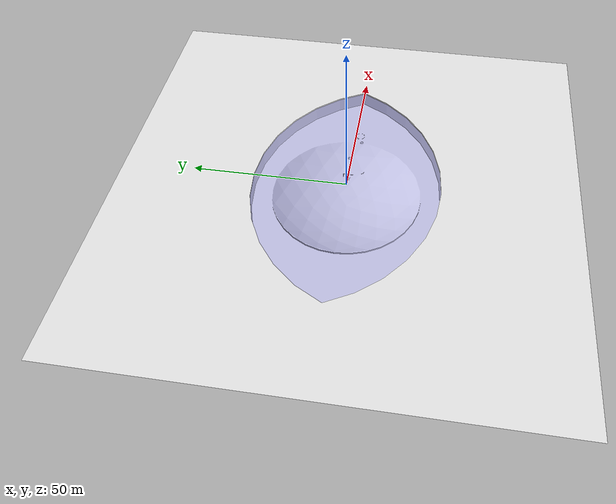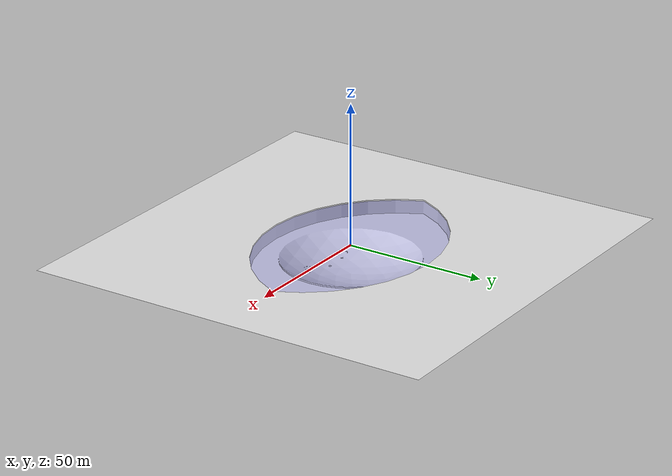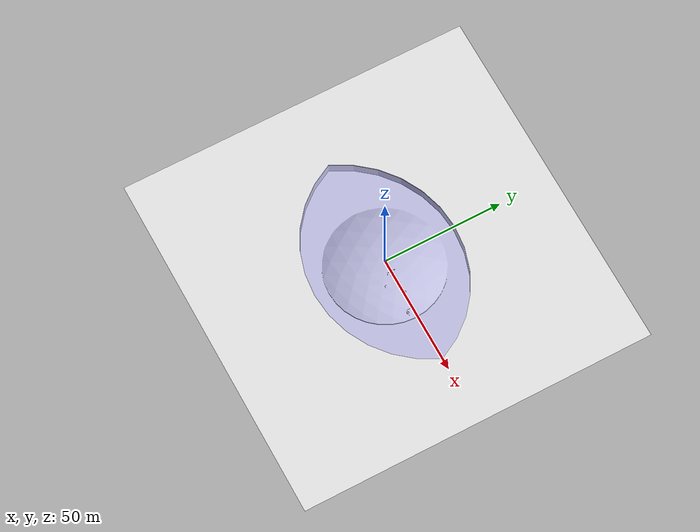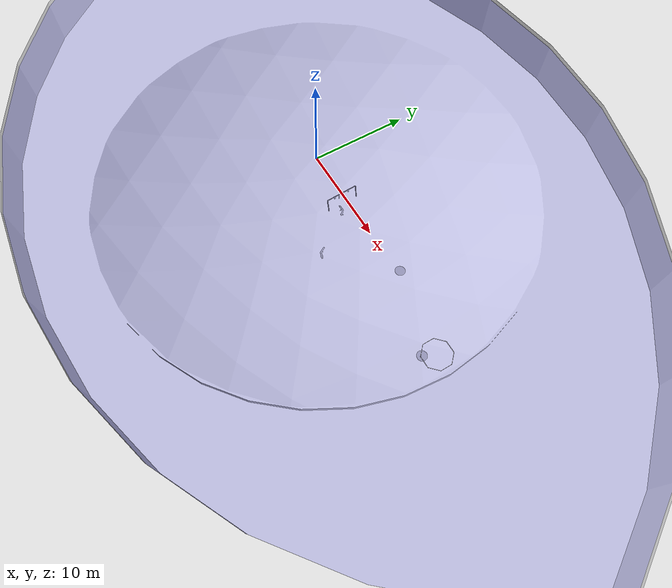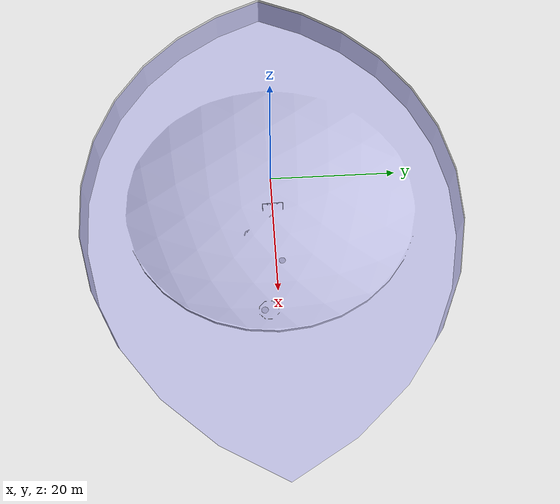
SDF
<sdf version="1.6">
 <world name="default">
  <physics name="default_physics" default="0" type="ode">
   <real_time_update_rate>100</real_time_update_rate>
   <max_step_size>0.01</max_step_size>
   <real_time_factor>1</real_time_factor>
  </physics>
  <spherical_coordinates>
   <surface_model>EARTH_WGS84</surface_model>
   <world_frame_orientation>ENU</world_frame_orientation>
   <latitude_deg>29.6474</latitude_deg>
   <longitude_deg>277.65</longitude_deg>
   <elevation>0.4</elevation>
   <heading_deg>180</heading_deg>
  </spherical_coordinates>
  <magnetic_field>5e-06 2.4e-05 3.9e-05</magnetic_field>
  <light name="illum" type="directional">
   <pose>-4 18 9 0 -0.75 0</pose>
   <diffuse>0.1 0.4 1 1</diffuse>
   <attenuation><constant>1</constant><range>10</range></attenuation>
   <specular>0.1 0.1 0.1 1</specular>
   <direction>0 0 -1</direction>
  </light>
  <light name="sky_illum" type="directional">
   <pose>0 0 5 3.14 -0 0</pose>
   <diffuse>1 1 1 1</diffuse>
   <attenuation><constant>1</constant><range>10</range></attenuation>
   <specular>0.1 0.1 0.1 1</specular>
   <direction>0 0 -1</direction>
  </light>
  <light name="sun" type="directional">
   <pose>0 0 10 0 -0 0</pose>
   <diffuse>0.8 0.8 0.8 1</diffuse>
   <specular>0.2 0.2 0.2 1</specular>
   <attenuation>
    <range>1000</range>
    <constant>0.9</constant>
    <linear>0.01</linear>
    <quadratic>0.001</quadratic>
   </attenuation>
   <direction>-0.5 0.1 -0.9</direction>
  </light>
  <light name="user_point_light_0" type="point">
   <pose>0.109933 -0.142384 1 0 -0 0</pose>
   <diffuse>0.5 0.5 0.5 1</diffuse>
   <specular>0.1 0.1 0.1 1</specular>
   <attenuation>
    <range>100</range>
    <constant>0.5</constant>
    <linear>0.01</linear>
    <quadratic>0.001</quadratic>
   </attenuation>
   <cast_shadows>0</cast_shadows>
   <direction>0 0 -1</direction>
  </light>
  <light name="user_point_light_1" type="point">
   <pose>-29.7505 -0.454729 1 0 -0 0</pose>
   <diffuse>0.5 0.5 0.5 1</diffuse>
   <specular>0.1 0.1 0.1 1</specular>
   <attenuation>
    <range>100</range>
    <constant>0.5</constant>
    <linear>0.01</linear>
    <quadratic>0.001</quadratic>
   </attenuation>
   <cast_shadows>0</cast_shadows>
   <direction>0 0 -1</direction>
  </light>
  <light name="user_point_light_2" type="point">
   <pose>31.6112 -2.69613 1 0 -0 0</pose>
   <diffuse>0.5 0.5 0.5 1</diffuse>
   <specular>0.1 0.1 0.1 1</specular>
   <attenuation>
    <range>100</range>
    <constant>0.5</constant>
    <linear>0.01</linear>
    <quadratic>0.001</quadratic>
   </attenuation>
   <cast_shadows>0</cast_shadows>
   <direction>0 0 -1</direction>
  </light>
  <model name="water">
   <static>1</static>
   <pose>-0.069528 0.449668 0 3.14159 9.3e-05 3.14159</pose>
   <link name="link">
    <visual name="visual">
     <transparency>0.8</transparency>
     <cast_shadows>0</cast_shadows>
     <geometry><box><size>92 61 0.02</size></box></geometry>
     <material>
      <ambient>0.2 0.2 0.9 1</ambient>
      <diffuse>0.2 0.2 0.9 1</diffuse>
      <specular>0.1 0.1 0.3 1</specular>
      <emissive>0 0 0 1</emissive>
     </material>
    </visual>
   </link>
  </model>
  <model name="transdec">
   <pose>0 0 0.5 0 -0 0</pose>
   <static>1</static>
   <link name="ground">
    <visual name="visual">
     <geometry><mesh><uri>file://transdec/transdec.dae</uri><scale>0.5 0.5 0.5</scale></mesh></geometry>
     <material>
      <script><uri>file://media/materials/scripts/gazebo.material</uri><name>Gazebo/White</name></script>
     </material>
    </visual>
    <collision name="collision">
     <geometry><mesh><uri>file://transdec/transdec.dae</uri><scale>0.5 0.5 0.5</scale></mesh></geometry>
    </collision>
   </link>
  </model>
  <model name="pathmarkers2018">
   <static>1</static>
   <link name="pathmarkers2018">
    <inertial>
     <mass>0.5</mass>
     <inertia><ixx>0</ixx><ixy>0</ixy><ixz>0</ixz><iyy>0</iyy><iyz>0</iyz><izz>0</izz></inertia>
    </inertial>
    <velocity_decay><linear>1e-05</linear><angular>1e-05</angular></velocity_decay>
    <collision name="pathmarkers2018col">
     <geometry><mesh><uri>file://markers/PathMarkers2018s.dae</uri></mesh></geometry>
    </collision>
    <sensor name="contact" type="contact">
     <contact><collision>pathmarkers2018col</collision><topic>__default_topic__</topic></contact>
     <update_rate>50</update_rate>
     <plugin name="gazebo_ros_bumper_controller" filename="libgazebo_ros_bumper.so">
      <alwaysOn>1</alwaysOn>
      <bumperTopicName>contact_bumper</bumperTopicName>
     </plugin>
    </sensor>
    <visual name="pathmarkers2018vis">
     <geometry><mesh><uri>file://markers/PathMarkers2018s.dae</uri></mesh></geometry>
    </visual>
   </link>
   <pose>4.49659 0.1787 -2.92663 0 -0 0</pose>
  </model>
  <model name="transdec_pinger">
   <static>1</static>
   <pose>14 1 -2 0 -0 0</pose>
   <link name="link">
    <visual name="visual">
     <geometry><cylinder><radius>0.5</radius><length>0.001</length></cylinder></geometry>
    </visual>
   </link>
  </model>
  <model name="transdec_pinger2">
   <static>1</static>
   <pose>22 -2 -2 0 -0 0</pose>
   <link name="link">
    <visual name="visual">
     <geometry><cylinder><radius>0.5</radius><length>0.001</length></cylinder></geometry>
    </visual>
   </link>
  </model>
  <scene>
   <sky><clouds><speed>12</speed></clouds></sky>
   <ambient>0.4 0.4 0.4 1</ambient>
   <background>0.7 0.7 0.7 1</background>
   <shadows>1</shadows>
  </scene>
  <gravity>0 0 -9.8</gravity>
  <atmosphere type="adiabatic"/>
  <model name="octogon">
   <static>1</static>
   <link name="octogon">
    <collision name="octogoncol">
     <geometry><mesh><uri>file://octogon/octogon.dae</uri></mesh></geometry>
    </collision>
    <visual name="octogonvis"><geometry><mesh><uri>file://octogon/octogon.dae</uri></mesh></geometry></visual>
   </link>
   <pose>22.9712 -1.43185 0 0 -0 1.5708</pose>
  </model>
  <model name="pathmarkers2018_0">
   <static>1</static>
   <link name="pathmarkers2018">
    <inertial>
     <mass>0.5</mass>
     <inertia><ixx>0</ixx><ixy>0</ixy><ixz>0</ixz><iyy>0</iyy><iyz>0</iyz><izz>0</izz></inertia>
    </inertial>
    <velocity_decay><linear>1e-05</linear><angular>1e-05</angular></velocity_decay>
    <collision name="pathmarkers2018col">
     <geometry><mesh><uri>file://markers/PathMarkers2018s.dae</uri></mesh></geometry>
    </collision>
    <sensor name="contact" type="contact">
     <contact><collision>pathmarkers2018col</collision><topic>__default_topic__</topic></contact>
     <update_rate>50</update_rate>
     <plugin name="gazebo_ros_bumper_controller" filename="libgazebo_ros_bumper.so">
      <alwaysOn>1</alwaysOn>
      <bumperTopicName>contact_bumper</bumperTopicName>
     </plugin>
    </sensor>
    <visual name="pathmarkers2018vis">
     <geometry><mesh><uri>file://markers/PathMarkers2018s.dae</uri></mesh></geometry>
    </visual>
   </link>
   <pose>8.80989 -4.68693 -2.97363 0.032661 -0.009562 2.8703</pose>
  </model>
  <model name="start_gate_2022">
   <static>1</static>
   <link name="base_link">
    <inertial>
     <pose>1.30078 1.35363 2.40887 0 -0 0</pose>
     <mass>13.5315</mass>
     <inertia>
      <ixx>5.04877</ixx>
      <ixy>0.364288</ixy>
      <ixz>-0.576968</ixz>
      <iyy>5.5194</iyy>
      <iyz>-1.05982</iyz>
      <izz>1.53641</izz>
     </inertia>
    </inertial>
    <collision name="base_link_collision">
     <geometry><mesh><uri>file://start_gate_2022/start_gate.dae</uri></mesh></geometry>
    </collision>
    <visual name="base_link_visual">
     <geometry><mesh><uri>file://start_gate_2022/start_gate.dae</uri></mesh></geometry>
    </visual>
   </link>
   <pose>3.52062 2.82876 -0.12531 0.119618 0.947618 -0.145634</pose>
  </model>
 </world>
</sdf>
